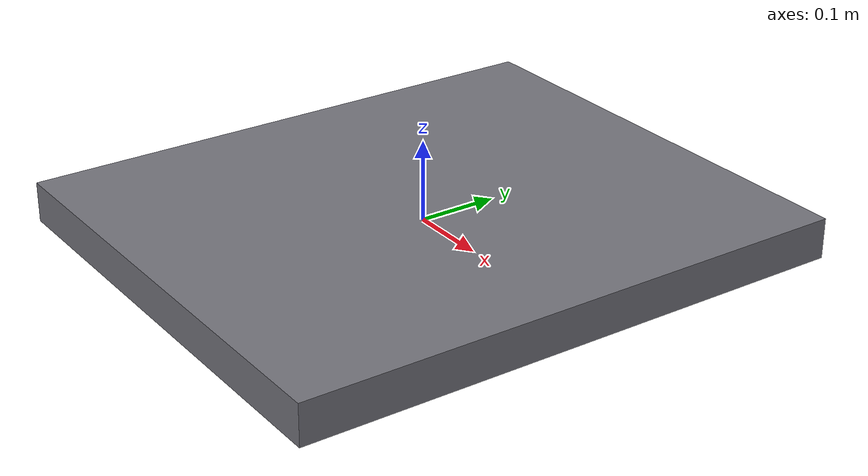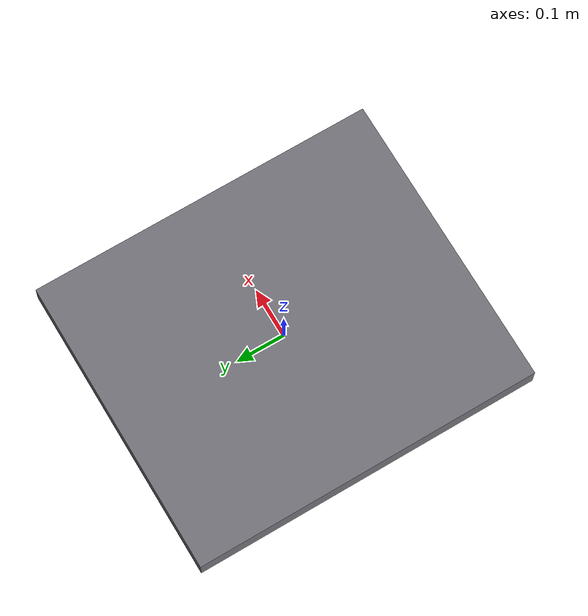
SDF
<?xml version="1.0" ?>
<sdf version="1.6">
  <model name="grasp_table">
    <static>true</static>
    <link name="table_link">
      <inertial>
        <mass>10.0</mass>
        <inertia>
          <ixx>0.410417</ixx><iyy>0.302083</iyy><izz>0.708333</izz>
          <ixy>0</ixy><ixz>0</ixz><iyz>0</iyz>
        </inertia>
      </inertial>
      <collision name="collision">
        <geometry>
          <box><size>0.60 0.70 0.05</size></box>
        </geometry>
      </collision>
      <visual name="visual">
        <geometry>
          <box><size>0.60 0.70 0.05</size></box>
        </geometry>
        <material>
          <ambient>0.35 0.35 0.38 1</ambient>
          <diffuse>0.45 0.45 0.48 1</diffuse>
        </material>
      </visual>
    </link>
  </model>
</sdf>
